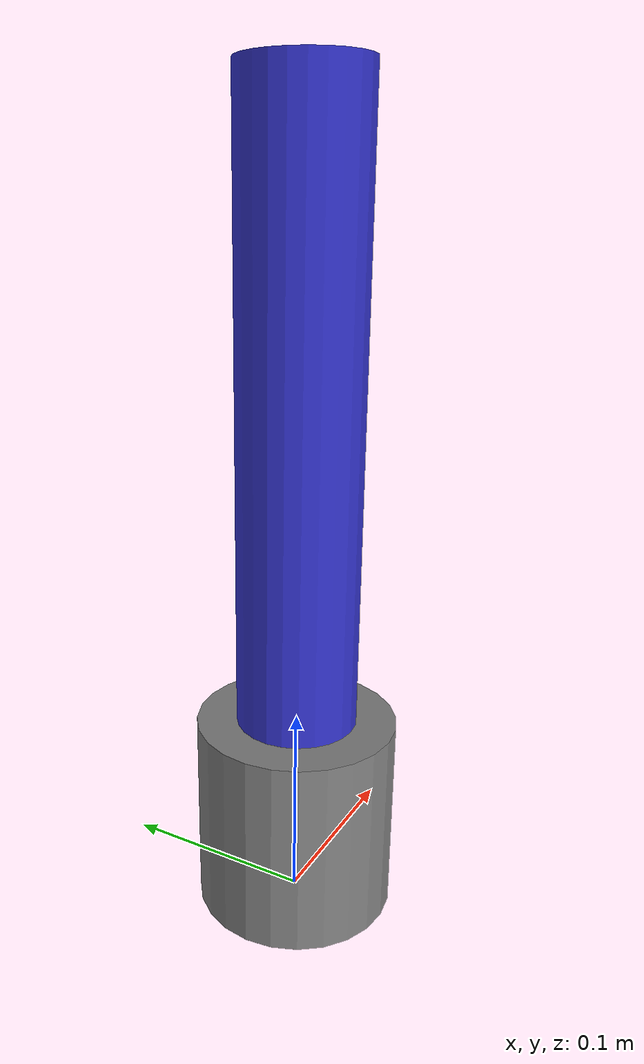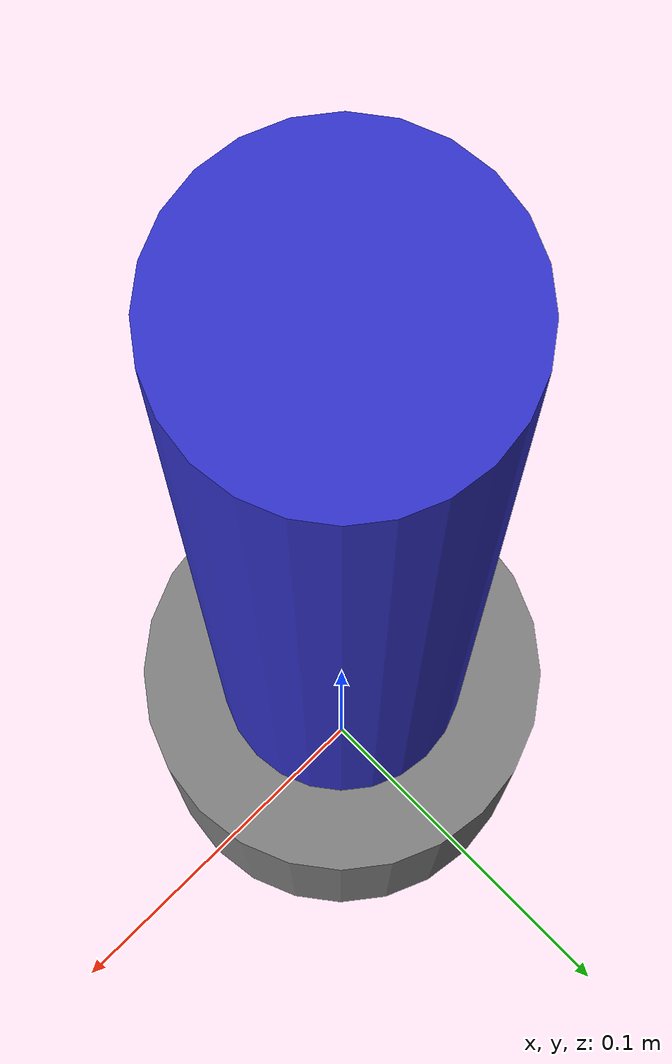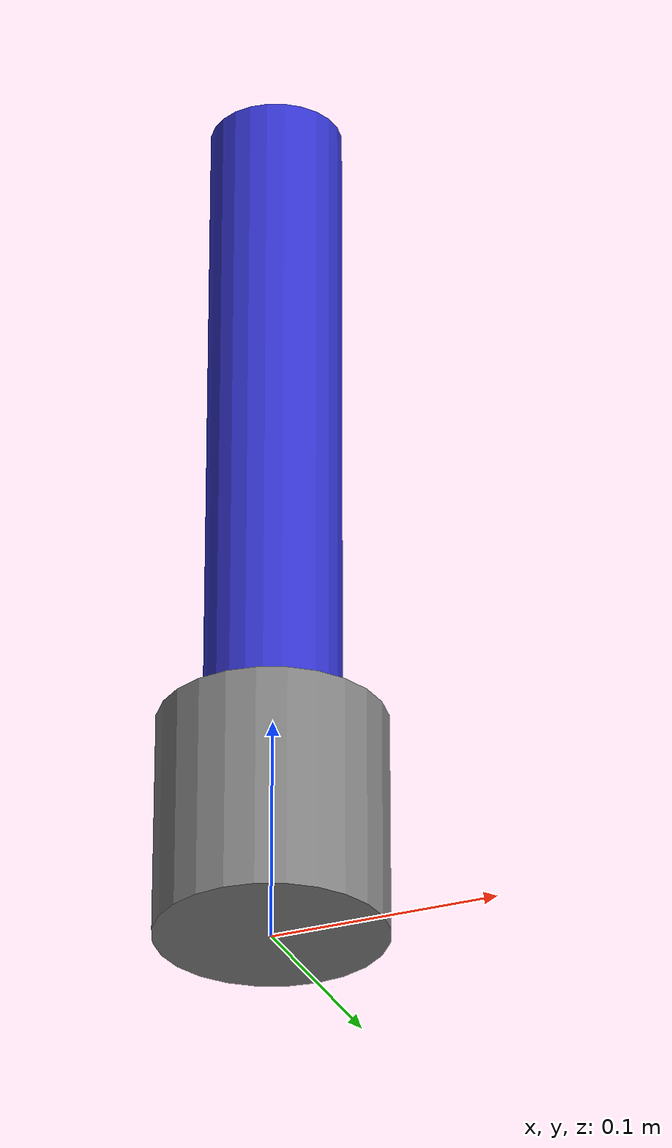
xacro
<?xml version="1.0"?>
<robot name="arm" xmlns:xacro="http://www.ros.org/wiki/xacro">

    <!-- 底座 -->
    <link name="base_link">
        <visual>
            <origin xyz="0 0 0.05" rpy="0 0 0"/>
            <geometry>
                <cylinder radius="0.05" length="0.1"/>
            </geometry>
            <material name="gray">
                <color rgba="0.5 0.5 0.5 1.0"/>
            </material>
        </visual>
    </link>

    <!-- 大臂 -->
    <link name="link1">
        <visual>
            <origin xyz="0 0 0.15" rpy="0 0 0"/>
            <geometry>
                <cylinder radius="0.03" length="0.3"/>
            </geometry>
            <material name="blue">
                <color rgba="0.2 0.2 0.8 1.0"/>
            </material>
        </visual>
    </link>

    <!-- 连接底座和大臂 -->
    <joint name="joint1" type="revolute">
        <parent link="base_link"/>
        <child link="link1"/>
        <origin xyz="0 0 0.1" rpy="0 0 0"/>
        <axis xyz="0 0 1"/>
        <limit lower="-3.14" upper="3.14" effort="50" velocity="2.0"/>
    </joint>

</robot>
